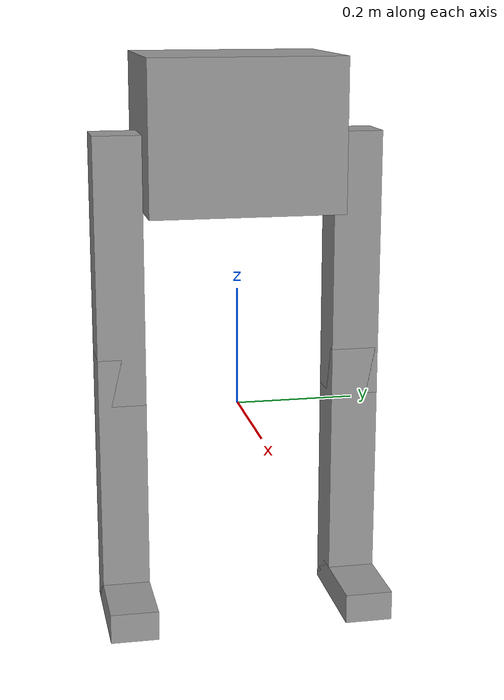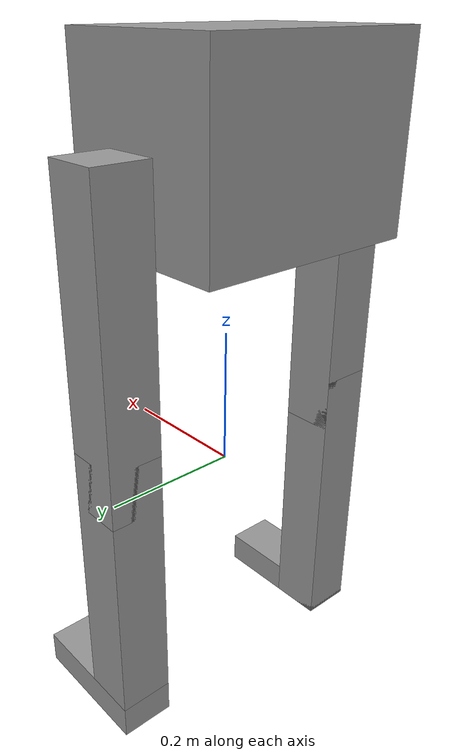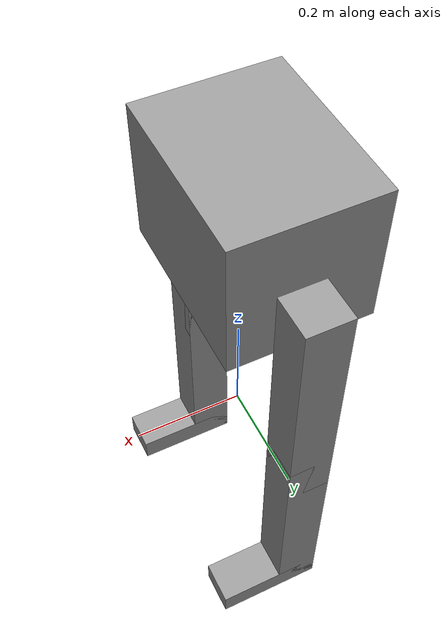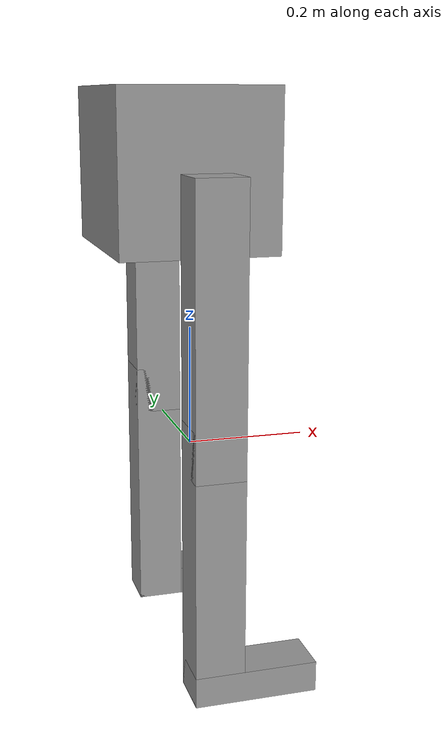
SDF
<?xml version='1.0'?>
<sdf version='1.6'>
  <model name='humanoid'>
    <link name='link_0'>
      <pose frame=''>0.043928 -0.199999 -0.333571 0 -0 0</pose>
      <inertial>
        <mass>1</mass>
        <inertia>
          <ixx>0.166667</ixx>
          <ixy>0</ixy>
          <ixz>0</ixz>
          <iyy>0.166667</iyy>
          <iyz>0</iyz>
          <izz>0.166667</izz>
        </inertia>
        <pose frame=''>0 0 0 0 -0 0</pose>
      </inertial>
      <gravity>1</gravity>
      <self_collide>0</self_collide>
      <kinematic>0</kinematic>
      <visual name='visual'>
        <pose frame=''>0 0 0 0 -0 0</pose>
        <geometry>
          <box>
            <size>0.2 0.08 0.05</size>
          </box>
        </geometry>
        <material>
          <lighting>1</lighting>
          <script>
            <uri>file://media/materials/scripts/gazebo.material</uri>
            <name>Gazebo/Grey</name>
          </script>
          <ambient>0.3 0.3 0.3 1</ambient>
          <diffuse>0.7 0.7 0.7 1</diffuse>
          <specular>0.01 0.01 0.01 1</specular>
          <emissive>0 0 0 1</emissive>
          <shader type='vertex'>
            <normal_map>__default__</normal_map>
          </shader>
        </material>
        <transparency>0</transparency>
        <cast_shadows>1</cast_shadows>
      </visual>
      <collision name='collision'>
        <laser_retro>0</laser_retro>
        <max_contacts>10</max_contacts>
        <pose frame=''>0 0 0 0 -0 0</pose>
        <geometry>
          <box>
            <size>0.2 0.08 0.05</size>
          </box>
        </geometry>
        <surface>
          <friction>
            <ode>
              <mu>1</mu>
              <mu2>1</mu2>
              <fdir1>0 0 0</fdir1>
              <slip1>0</slip1>
              <slip2>0</slip2>
            </ode>
            <torsional>
              <coefficient>1</coefficient>
              <patch_radius>0</patch_radius>
              <surface_radius>0</surface_radius>
              <use_patch_radius>1</use_patch_radius>
              <ode>
                <slip>0</slip>
              </ode>
            </torsional>
          </friction>
          <bounce>
            <restitution_coefficient>0</restitution_coefficient>
            <threshold>1e+06</threshold>
          </bounce>
          <contact>
            <collide_without_contact>0</collide_without_contact>
            <collide_without_contact_bitmask>1</collide_without_contact_bitmask>
            <collide_bitmask>1</collide_bitmask>
            <ode>
              <soft_cfm>0</soft_cfm>
              <soft_erp>0.2</soft_erp>
              <kp>1e+13</kp>
              <kd>1</kd>
              <max_vel>0.01</max_vel>
              <min_depth>0</min_depth>
            </ode>
            <bullet>
              <split_impulse>1</split_impulse>
              <split_impulse_penetration_threshold>-0.01</split_impulse_penetration_threshold>
              <soft_cfm>0</soft_cfm>
              <soft_erp>0.2</soft_erp>
              <kp>1e+13</kp>
              <kd>1</kd>
            </bullet>
          </contact>
        </surface>
      </collision>
    </link>
    <link name='link_0_clone'>
      <pose frame=''>0.043928 0.200001 -0.333571 0 -0 0</pose>
      <inertial>
        <mass>1</mass>
        <inertia>
          <ixx>0.166667</ixx>
          <ixy>0</ixy>
          <ixz>0</ixz>
          <iyy>0.166667</iyy>
          <iyz>0</iyz>
          <izz>0.166667</izz>
        </inertia>
        <pose frame=''>0 0 0 0 -0 0</pose>
      </inertial>
      <self_collide>0</self_collide>
      <kinematic>0</kinematic>
      <gravity>1</gravity>
      <visual name='visual'>
        <pose frame=''>0 0 0 0 -0 0</pose>
        <geometry>
          <box>
            <size>0.2 0.08 0.05</size>
          </box>
        </geometry>
        <material>
          <lighting>1</lighting>
          <script>
            <uri>file://media/materials/scripts/gazebo.material</uri>
            <name>Gazebo/Grey</name>
          </script>
          <ambient>0.3 0.3 0.3 1</ambient>
          <diffuse>0.7 0.7 0.7 1</diffuse>
          <specular>0.01 0.01 0.01 1</specular>
          <emissive>0 0 0 1</emissive>
          <shader type='vertex'>
            <normal_map>__default__</normal_map>
          </shader>
        </material>
        <transparency>0</transparency>
        <cast_shadows>1</cast_shadows>
      </visual>
      <collision name='collision'>
        <laser_retro>0</laser_retro>
        <max_contacts>10</max_contacts>
        <pose frame=''>0 0 0 0 -0 0</pose>
        <geometry>
          <box>
            <size>0.2 0.08 0.05</size>
          </box>
        </geometry>
        <surface>
          <friction>
            <ode>
              <mu>1</mu>
              <mu2>1</mu2>
              <fdir1>0 0 0</fdir1>
              <slip1>0</slip1>
              <slip2>0</slip2>
            </ode>
            <torsional>
              <coefficient>1</coefficient>
              <patch_radius>0</patch_radius>
              <surface_radius>0</surface_radius>
              <use_patch_radius>1</use_patch_radius>
              <ode>
                <slip>0</slip>
              </ode>
            </torsional>
          </friction>
          <bounce>
            <restitution_coefficient>0</restitution_coefficient>
            <threshold>1e+06</threshold>
          </bounce>
          <contact>
            <collide_without_contact>0</collide_without_contact>
            <collide_without_contact_bitmask>1</collide_without_contact_bitmask>
            <collide_bitmask>1</collide_bitmask>
            <ode>
              <soft_cfm>0</soft_cfm>
              <soft_erp>0.2</soft_erp>
              <kp>1e+13</kp>
              <kd>1</kd>
              <max_vel>0.01</max_vel>
              <min_depth>0</min_depth>
            </ode>
            <bullet>
              <split_impulse>1</split_impulse>
              <split_impulse_penetration_threshold>-0.01</split_impulse_penetration_threshold>
              <soft_cfm>0</soft_cfm>
              <soft_erp>0.2</soft_erp>
              <kp>1e+13</kp>
              <kd>1</kd>
            </bullet>
          </contact>
        </surface>
      </collision>
    </link>
    <link name='link_0_clone_0'>
      <pose frame=''>-0.016072 -0.199999 -0.133571 0 -0 0</pose>
      <inertial>
        <mass>1</mass>
        <inertia>
          <ixx>0.166667</ixx>
          <ixy>0</ixy>
          <ixz>0</ixz>
          <iyy>0.166667</iyy>
          <iyz>0</iyz>
          <izz>0.166667</izz>
        </inertia>
        <pose frame=''>0 0 0 0 -0 0</pose>
      </inertial>
      <self_collide>0</self_collide>
      <kinematic>0</kinematic>
      <gravity>1</gravity>
      <visual name='visual'>
        <pose frame=''>0 0 0 0 -0 0</pose>
        <geometry>
          <box>
            <size>0.08 0.08 0.45</size>
          </box>
        </geometry>
        <material>
          <lighting>1</lighting>
          <script>
            <uri>file://media/materials/scripts/gazebo.material</uri>
            <name>Gazebo/Grey</name>
          </script>
          <ambient>0.3 0.3 0.3 1</ambient>
          <diffuse>0.7 0.7 0.7 1</diffuse>
          <specular>0.01 0.01 0.01 1</specular>
          <emissive>0 0 0 1</emissive>
          <shader type='vertex'>
            <normal_map>__default__</normal_map>
          </shader>
        </material>
        <transparency>0</transparency>
        <cast_shadows>1</cast_shadows>
      </visual>
      <collision name='collision'>
        <laser_retro>0</laser_retro>
        <max_contacts>10</max_contacts>
        <pose frame=''>0 0 0 0 -0 0</pose>
        <geometry>
          <box>
            <size>0.08 0.08 0.45</size>
          </box>
        </geometry>
        <surface>
          <friction>
            <ode>
              <mu>1</mu>
              <mu2>1</mu2>
              <fdir1>0 0 0</fdir1>
              <slip1>0</slip1>
              <slip2>0</slip2>
            </ode>
            <torsional>
              <coefficient>1</coefficient>
              <patch_radius>0</patch_radius>
              <surface_radius>0</surface_radius>
              <use_patch_radius>1</use_patch_radius>
              <ode>
                <slip>0</slip>
              </ode>
            </torsional>
          </friction>
          <bounce>
            <restitution_coefficient>0</restitution_coefficient>
            <threshold>1e+06</threshold>
          </bounce>
          <contact>
            <collide_without_contact>0</collide_without_contact>
            <collide_without_contact_bitmask>1</collide_without_contact_bitmask>
            <collide_bitmask>1</collide_bitmask>
            <ode>
              <soft_cfm>0</soft_cfm>
              <soft_erp>0.2</soft_erp>
              <kp>1e+13</kp>
              <kd>1</kd>
              <max_vel>0.01</max_vel>
              <min_depth>0</min_depth>
            </ode>
            <bullet>
              <split_impulse>1</split_impulse>
              <split_impulse_penetration_threshold>-0.01</split_impulse_penetration_threshold>
              <soft_cfm>0</soft_cfm>
              <soft_erp>0.2</soft_erp>
              <kp>1e+13</kp>
              <kd>1</kd>
            </bullet>
          </contact>
        </surface>
      </collision>
    </link>
    <link name='link_0_clone_0_clone'>
      <pose frame=''>-0.016072 0.200001 -0.133571 0 -0 0</pose>
      <inertial>
        <mass>1</mass>
        <inertia>
          <ixx>0.166667</ixx>
          <ixy>0</ixy>
          <ixz>0</ixz>
          <iyy>0.166667</iyy>
          <iyz>0</iyz>
          <izz>0.166667</izz>
        </inertia>
        <pose frame=''>0 0 0 0 -0 0</pose>
      </inertial>
      <self_collide>0</self_collide>
      <kinematic>0</kinematic>
      <gravity>1</gravity>
      <visual name='visual'>
        <pose frame=''>0 0 0 0 -0 0</pose>
        <geometry>
          <box>
            <size>0.08 0.08 0.45</size>
          </box>
        </geometry>
        <material>
          <lighting>1</lighting>
          <script>
            <uri>file://media/materials/scripts/gazebo.material</uri>
            <name>Gazebo/Grey</name>
          </script>
          <ambient>0.3 0.3 0.3 1</ambient>
          <diffuse>0.7 0.7 0.7 1</diffuse>
          <specular>0.01 0.01 0.01 1</specular>
          <emissive>0 0 0 1</emissive>
          <shader type='vertex'>
            <normal_map>__default__</normal_map>
          </shader>
        </material>
        <transparency>0</transparency>
        <cast_shadows>1</cast_shadows>
      </visual>
      <collision name='collision'>
        <laser_retro>0</laser_retro>
        <max_contacts>10</max_contacts>
        <pose frame=''>0 0 0 0 -0 0</pose>
        <geometry>
          <box>
            <size>0.08 0.08 0.45</size>
          </box>
        </geometry>
        <surface>
          <friction>
            <ode>
              <mu>1</mu>
              <mu2>1</mu2>
              <fdir1>0 0 0</fdir1>
              <slip1>0</slip1>
              <slip2>0</slip2>
            </ode>
            <torsional>
              <coefficient>1</coefficient>
              <patch_radius>0</patch_radius>
              <surface_radius>0</surface_radius>
              <use_patch_radius>1</use_patch_radius>
              <ode>
                <slip>0</slip>
              </ode>
            </torsional>
          </friction>
          <bounce>
            <restitution_coefficient>0</restitution_coefficient>
            <threshold>1e+06</threshold>
          </bounce>
          <contact>
            <collide_without_contact>0</collide_without_contact>
            <collide_without_contact_bitmask>1</collide_without_contact_bitmask>
            <collide_bitmask>1</collide_bitmask>
            <ode>
              <soft_cfm>0</soft_cfm>
              <soft_erp>0.2</soft_erp>
              <kp>1e+13</kp>
              <kd>1</kd>
              <max_vel>0.01</max_vel>
              <min_depth>0</min_depth>
            </ode>
            <bullet>
              <split_impulse>1</split_impulse>
              <split_impulse_penetration_threshold>-0.01</split_impulse_penetration_threshold>
              <soft_cfm>0</soft_cfm>
              <soft_erp>0.2</soft_erp>
              <kp>1e+13</kp>
              <kd>1</kd>
            </bullet>
          </contact>
        </surface>
      </collision>
    </link>
    <link name='link_0_clone_0_clone_0'>
      <pose frame=''>-0.016072 -0.199999 0.236429 0 -0 0</pose>
      <inertial>
        <mass>1</mass>
        <inertia>
          <ixx>0.166667</ixx>
          <ixy>0</ixy>
          <ixz>0</ixz>
          <iyy>0.166667</iyy>
          <iyz>0</iyz>
          <izz>0.166667</izz>
        </inertia>
        <pose frame=''>0 0 0 0 -0 0</pose>
      </inertial>
      <self_collide>0</self_collide>
      <kinematic>0</kinematic>
      <gravity>1</gravity>
      <visual name='visual'>
        <pose frame=''>0 0 0 0 -0 0</pose>
        <geometry>
          <box>
            <size>0.08 0.08 0.45</size>
          </box>
        </geometry>
        <material>
          <lighting>1</lighting>
          <script>
            <uri>file://media/materials/scripts/gazebo.material</uri>
            <name>Gazebo/Grey</name>
          </script>
          <ambient>0.3 0.3 0.3 1</ambient>
          <diffuse>0.7 0.7 0.7 1</diffuse>
          <specular>0.01 0.01 0.01 1</specular>
          <emissive>0 0 0 1</emissive>
          <shader type='vertex'>
            <normal_map>__default__</normal_map>
          </shader>
        </material>
        <transparency>0</transparency>
        <cast_shadows>1</cast_shadows>
      </visual>
      <collision name='collision'>
        <laser_retro>0</laser_retro>
        <max_contacts>10</max_contacts>
        <pose frame=''>0 0 0 0 -0 0</pose>
        <geometry>
          <box>
            <size>0.08 0.08 0.45</size>
          </box>
        </geometry>
        <surface>
          <friction>
            <ode>
              <mu>1</mu>
              <mu2>1</mu2>
              <fdir1>0 0 0</fdir1>
              <slip1>0</slip1>
              <slip2>0</slip2>
            </ode>
            <torsional>
              <coefficient>1</coefficient>
              <patch_radius>0</patch_radius>
              <surface_radius>0</surface_radius>
              <use_patch_radius>1</use_patch_radius>
              <ode>
                <slip>0</slip>
              </ode>
            </torsional>
          </friction>
          <bounce>
            <restitution_coefficient>0</restitution_coefficient>
            <threshold>1e+06</threshold>
          </bounce>
          <contact>
            <collide_without_contact>0</collide_without_contact>
            <collide_without_contact_bitmask>1</collide_without_contact_bitmask>
            <collide_bitmask>1</collide_bitmask>
            <ode>
              <soft_cfm>0</soft_cfm>
              <soft_erp>0.2</soft_erp>
              <kp>1e+13</kp>
              <kd>1</kd>
              <max_vel>0.01</max_vel>
              <min_depth>0</min_depth>
            </ode>
            <bullet>
              <split_impulse>1</split_impulse>
              <split_impulse_penetration_threshold>-0.01</split_impulse_penetration_threshold>
              <soft_cfm>0</soft_cfm>
              <soft_erp>0.2</soft_erp>
              <kp>1e+13</kp>
              <kd>1</kd>
            </bullet>
          </contact>
        </surface>
      </collision>
    </link>
    <link name='link_0_clone_0_clone_0_clone'>
      <pose frame=''>-0.016072 0.200001 0.236429 0 -0 0</pose>
      <inertial>
        <mass>1</mass>
        <inertia>
          <ixx>0.166667</ixx>
          <ixy>0</ixy>
          <ixz>0</ixz>
          <iyy>0.166667</iyy>
          <iyz>0</iyz>
          <izz>0.166667</izz>
        </inertia>
        <pose frame=''>0 0 0 0 -0 0</pose>
      </inertial>
      <self_collide>0</self_collide>
      <kinematic>0</kinematic>
      <gravity>1</gravity>
      <visual name='visual'>
        <pose frame=''>0 0 0 0 -0 0</pose>
        <geometry>
          <box>
            <size>0.08 0.08 0.45</size>
          </box>
        </geometry>
        <material>
          <lighting>1</lighting>
          <script>
            <uri>file://media/materials/scripts/gazebo.material</uri>
            <name>Gazebo/Grey</name>
          </script>
          <ambient>0.3 0.3 0.3 1</ambient>
          <diffuse>0.7 0.7 0.7 1</diffuse>
          <specular>0.01 0.01 0.01 1</specular>
          <emissive>0 0 0 1</emissive>
          <shader type='vertex'>
            <normal_map>__default__</normal_map>
          </shader>
        </material>
        <transparency>0</transparency>
        <cast_shadows>1</cast_shadows>
      </visual>
      <collision name='collision'>
        <laser_retro>0</laser_retro>
        <max_contacts>10</max_contacts>
        <pose frame=''>0 0 0 0 -0 0</pose>
        <geometry>
          <box>
            <size>0.08 0.08 0.45</size>
          </box>
        </geometry>
        <surface>
          <friction>
            <ode>
              <mu>1</mu>
              <mu2>1</mu2>
              <fdir1>0 0 0</fdir1>
              <slip1>0</slip1>
              <slip2>0</slip2>
            </ode>
            <torsional>
              <coefficient>1</coefficient>
              <patch_radius>0</patch_radius>
              <surface_radius>0</surface_radius>
              <use_patch_radius>1</use_patch_radius>
              <ode>
                <slip>0</slip>
              </ode>
            </torsional>
          </friction>
          <bounce>
            <restitution_coefficient>0</restitution_coefficient>
            <threshold>1e+06</threshold>
          </bounce>
          <contact>
            <collide_without_contact>0</collide_without_contact>
            <collide_without_contact_bitmask>1</collide_without_contact_bitmask>
            <collide_bitmask>1</collide_bitmask>
            <ode>
              <soft_cfm>0</soft_cfm>
              <soft_erp>0.2</soft_erp>
              <kp>1e+13</kp>
              <kd>1</kd>
              <max_vel>0.01</max_vel>
              <min_depth>0</min_depth>
            </ode>
            <bullet>
              <split_impulse>1</split_impulse>
              <split_impulse_penetration_threshold>-0.01</split_impulse_penetration_threshold>
              <soft_cfm>0</soft_cfm>
              <soft_erp>0.2</soft_erp>
              <kp>1e+13</kp>
              <kd>1</kd>
            </bullet>
          </contact>
        </surface>
      </collision>
    </link>
    <link name='link_2'>
      <pose frame=''>-0.023572 1e-06 0.461429 0 -0 0</pose>
      <inertial>
        <mass>1</mass>
        <inertia>
          <ixx>0.166667</ixx>
          <ixy>0</ixy>
          <ixz>0</ixz>
          <iyy>0.166667</iyy>
          <iyz>0</iyz>
          <izz>0.166667</izz>
        </inertia>
        <pose frame=''>0 0 0 0 -0 0</pose>
      </inertial>
      <gravity>1</gravity>
      <self_collide>0</self_collide>
      <kinematic>0</kinematic>
      <visual name='visual'>
        <pose frame=''>0 0 0 0 -0 0</pose>
        <geometry>
          <box>
            <size>0.25 0.32 0.25</size>
          </box>
        </geometry>
        <material>
          <lighting>1</lighting>
          <script>
            <uri>file://media/materials/scripts/gazebo.material</uri>
            <name>Gazebo/Grey</name>
          </script>
          <ambient>0.3 0.3 0.3 1</ambient>
          <diffuse>0.7 0.7 0.7 1</diffuse>
          <specular>0.01 0.01 0.01 1</specular>
          <emissive>0 0 0 1</emissive>
          <shader type='vertex'>
            <normal_map>__default__</normal_map>
          </shader>
        </material>
        <transparency>0</transparency>
        <cast_shadows>1</cast_shadows>
      </visual>
      <collision name='collision'>
        <laser_retro>0</laser_retro>
        <max_contacts>10</max_contacts>
        <pose frame=''>0 0 0 0 -0 0</pose>
        <geometry>
          <box>
            <size>0.25 0.32 0.25</size>
          </box>
        </geometry>
        <surface>
          <friction>
            <ode>
              <mu>1</mu>
              <mu2>1</mu2>
              <fdir1>0 0 0</fdir1>
              <slip1>0</slip1>
              <slip2>0</slip2>
            </ode>
            <torsional>
              <coefficient>1</coefficient>
              <patch_radius>0</patch_radius>
              <surface_radius>0</surface_radius>
              <use_patch_radius>1</use_patch_radius>
              <ode>
                <slip>0</slip>
              </ode>
            </torsional>
          </friction>
          <bounce>
            <restitution_coefficient>0</restitution_coefficient>
            <threshold>1e+06</threshold>
          </bounce>
          <contact>
            <collide_without_contact>0</collide_without_contact>
            <collide_without_contact_bitmask>1</collide_without_contact_bitmask>
            <collide_bitmask>1</collide_bitmask>
            <ode>
              <soft_cfm>0</soft_cfm>
              <soft_erp>0.2</soft_erp>
              <kp>1e+13</kp>
              <kd>1</kd>
              <max_vel>0.01</max_vel>
              <min_depth>0</min_depth>
            </ode>
            <bullet>
              <split_impulse>1</split_impulse>
              <split_impulse_penetration_threshold>-0.01</split_impulse_penetration_threshold>
              <soft_cfm>0</soft_cfm>
              <soft_erp>0.2</soft_erp>
              <kp>1e+13</kp>
              <kd>1</kd>
            </bullet>
          </contact>
        </surface>
      </collision>
    </link>
    <joint name='link_0_clone_0_JOINT_12' type='revolute'>
      <parent>link_0_clone_0</parent>
      <child>link_0</child>
      <pose frame=''>-0.05 0 0 0 -0 0</pose>
      <axis>
        <xyz>0 1 0</xyz>
        <use_parent_model_frame>0</use_parent_model_frame>
        <limit>
          <lower>-1.79769e+308</lower>
          <upper>1.79769e+308</upper>
          <effort>-1</effort>
          <velocity>-1</velocity>
        </limit>
        <dynamics>
          <spring_reference>0</spring_reference>
          <spring_stiffness>0</spring_stiffness>
          <damping>0</damping>
        </dynamics>
      </axis>
      <physics>
        <ode>
          <limit>
            <cfm>0</cfm>
            <erp>0.2</erp>
          </limit>
          <suspension>
            <cfm>0</cfm>
            <erp>0.2</erp>
          </suspension>
        </ode>
      </physics>
    </joint>
    <joint name='link_0_clone_0_clone_0_JOINT_8' type='revolute'>
      <parent>link_0_clone_0_clone_0</parent>
      <child>link_0_clone_0</child>
      <pose frame=''>0 0 0.225 0 -0 0</pose>
      <axis>
        <xyz>0 1 0</xyz>
        <use_parent_model_frame>0</use_parent_model_frame>
        <limit>
          <lower>-1.79769e+308</lower>
          <upper>1.79769e+308</upper>
          <effort>-1</effort>
          <velocity>-1</velocity>
        </limit>
        <dynamics>
          <spring_reference>0</spring_reference>
          <spring_stiffness>0</spring_stiffness>
          <damping>0</damping>
        </dynamics>
      </axis>
      <physics>
        <ode>
          <limit>
            <cfm>0</cfm>
            <erp>0.2</erp>
          </limit>
          <suspension>
            <cfm>0</cfm>
            <erp>0.2</erp>
          </suspension>
        </ode>
      </physics>
    </joint>
    <joint name='link_0_clone_0_clone_0_clone_JOINT_10' type='revolute'>
      <parent>link_0_clone_0_clone_0_clone</parent>
      <child>link_0_clone_0_clone</child>
      <pose frame=''>0 0 0.225 0 -0 0</pose>
      <axis>
        <xyz>-0 -1 -0</xyz>
        <use_parent_model_frame>0</use_parent_model_frame>
        <limit>
          <lower>-1.79769e+308</lower>
          <upper>1.79769e+308</upper>
          <effort>-1</effort>
          <velocity>-1</velocity>
        </limit>
        <dynamics>
          <spring_reference>0</spring_reference>
          <spring_stiffness>0</spring_stiffness>
          <damping>0</damping>
        </dynamics>
      </axis>
      <physics>
        <ode>
          <limit>
            <cfm>0</cfm>
            <erp>0.2</erp>
          </limit>
          <suspension>
            <cfm>0</cfm>
            <erp>0.2</erp>
          </suspension>
        </ode>
      </physics>
    </joint>
    <joint name='link_0_clone_0_clone_JOINT_11' type='revolute'>
      <parent>link_0_clone_0_clone</parent>
      <child>link_0_clone</child>
      <pose frame=''>-0.05 0 0 0 -0 0</pose>
      <axis>
        <xyz>-0 -1 -0</xyz>
        <use_parent_model_frame>0</use_parent_model_frame>
        <limit>
          <lower>-1.79769e+308</lower>
          <upper>1.79769e+308</upper>
          <effort>-1</effort>
          <velocity>-1</velocity>
        </limit>
        <dynamics>
          <spring_reference>0</spring_reference>
          <spring_stiffness>0</spring_stiffness>
          <damping>0</damping>
        </dynamics>
      </axis>
      <physics>
        <ode>
          <limit>
            <cfm>0</cfm>
            <erp>0.2</erp>
          </limit>
          <suspension>
            <cfm>0</cfm>
            <erp>0.2</erp>
          </suspension>
        </ode>
      </physics>
    </joint>
    <joint name='link_2_JOINT_6' type='revolute'>
      <parent>link_2</parent>
      <child>link_0_clone_0_clone_0</child>
      <pose frame=''>0 0 0.225 0 -0 0</pose>
      <axis>
        <xyz>0 1 0</xyz>
        <use_parent_model_frame>0</use_parent_model_frame>
        <limit>
          <lower>-1e+16</lower>
          <upper>1e+16</upper>
          <effort>-1</effort>
          <velocity>-1</velocity>
        </limit>
        <dynamics>
          <spring_reference>0</spring_reference>
          <spring_stiffness>0</spring_stiffness>
          <damping>0</damping>
          <friction>0</friction>
        </dynamics>
      </axis>
      <physics>
        <ode>
          <limit>
            <cfm>0</cfm>
            <erp>0.2</erp>
          </limit>
          <suspension>
            <cfm>0</cfm>
            <erp>0.2</erp>
          </suspension>
        </ode>
      </physics>
    </joint>
    <joint name='link_2_JOINT_7' type='revolute'>
      <parent>link_2</parent>
      <child>link_0_clone_0_clone_0_clone</child>
      <pose frame=''>0 0 0.225 0 -0 0</pose>
      <axis>
        <xyz>-0 -1 -0</xyz>
        <use_parent_model_frame>0</use_parent_model_frame>
        <limit>
          <lower>-1.79769e+308</lower>
          <upper>1.79769e+308</upper>
          <effort>-1</effort>
          <velocity>-1</velocity>
        </limit>
        <dynamics>
          <spring_reference>0</spring_reference>
          <spring_stiffness>0</spring_stiffness>
          <damping>0</damping>
        </dynamics>
      </axis>
      <physics>
        <ode>
          <limit>
            <cfm>0</cfm>
            <erp>0.2</erp>
          </limit>
          <suspension>
            <cfm>0</cfm>
            <erp>0.2</erp>
          </suspension>
        </ode>
      </physics>
    </joint>
    <static>0</static>
    <allow_auto_disable>1</allow_auto_disable>
  </model>
</sdf>
